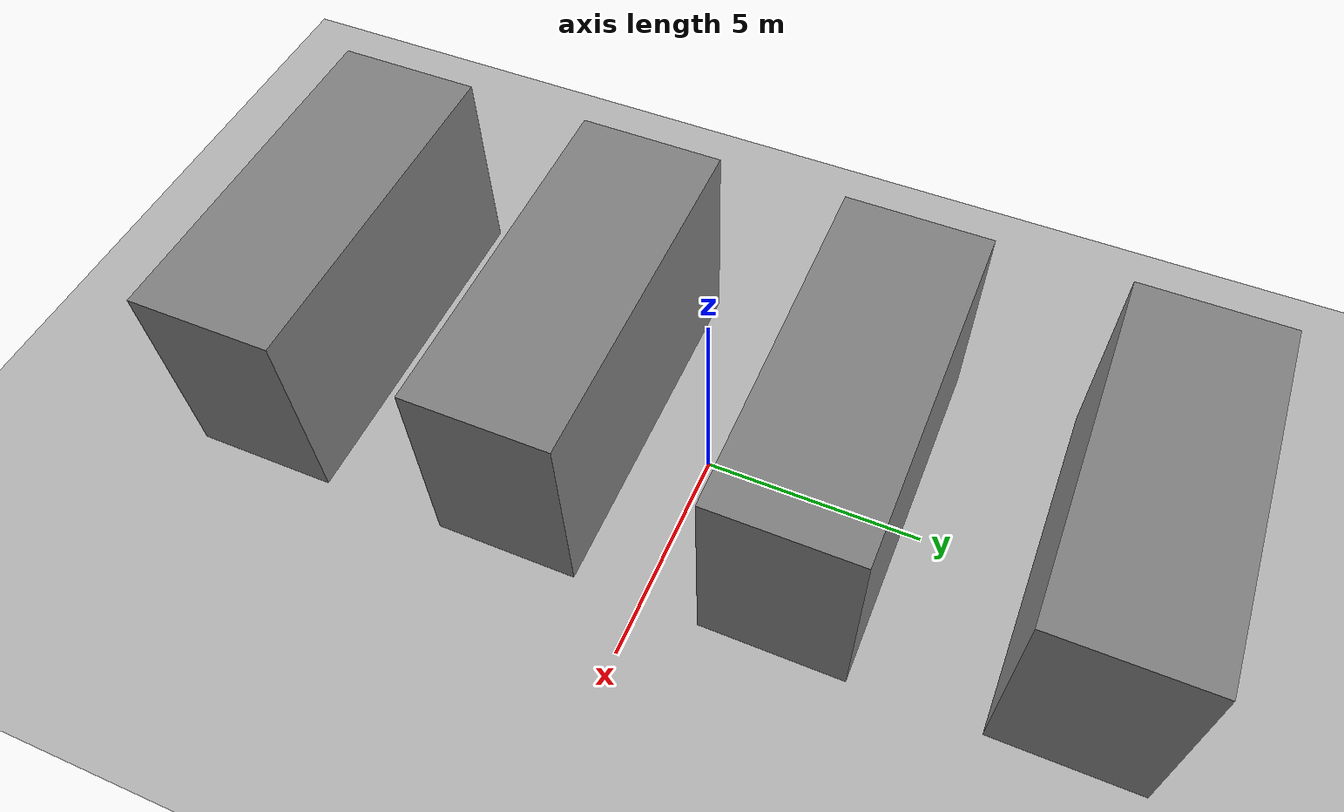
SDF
<?xml version="1.0" ?>
<sdf version='1.7'>
  <world name='default'>
    <light name='sun' type='directional'>
      <cast_shadows>1</cast_shadows>
      <pose>0 0 10 0 -0 0</pose>
      <diffuse>0.8 0.8 0.8 1</diffuse>
      <specular>0.2 0.2 0.2 1</specular>
      <attenuation>
        <range>1000</range>
        <constant>0.9</constant>
        <linear>0.01</linear>
        <quadratic>0.001</quadratic>
      </attenuation>
      <direction>-0.5 0.1 -0.9</direction>
    </light>

    <model name='ground_plane'>
      <static>1</static>
      <link name='link'>
        <collision name='collision'>
          <geometry>
            <plane>
              <normal>0 0 1</normal>
              <size>200 200</size>
            </plane>
          </geometry>
        </collision>
        <visual name='visual'>
          <cast_shadows>0</cast_shadows>
          <geometry>
            <plane>
              <normal>0 0 1</normal>
              <size>200 200</size>
            </plane>
          </geometry>
          <material>
            <ambient>0.7 0.7 0.7 1</ambient>
            <diffuse>0.7 0.7 0.7 1</diffuse>
            <specular>0.2 0.2 0.2 1</specular>
          </material>
        </visual>
      </link>
    </model>

    <gravity>0 0 -9.8</gravity>
    <atmosphere type='adiabatic'/>
    <physics type='ode'>
      <max_step_size>0.004</max_step_size>
      <real_time_factor>1</real_time_factor>
      <real_time_update_rate>250</real_time_update_rate>
    </physics>

    <plugin filename="ignition-gazebo-physics-system" name="gz::sim::systems::Physics"/>
    <plugin filename="ignition-gazebo-sensors-system" name="gz::sim::systems::Sensors">
      <render_engine>ogre2</render_engine>
    </plugin>
    <plugin filename="ignition-gazebo-user-commands-system" name="gz::sim::systems::UserCommands"/>
    <plugin filename="ignition-gazebo-scene-broadcaster-system" name="gz::sim::systems::SceneBroadcaster"/>

    <scene>
      <ambient>0.4 0.4 0.4 1</ambient>
      <background>0.7 0.7 0.7 1</background>
      <shadows>1</shadows>
    </scene>

    <!-- 4 面平行墙体，墙之间形成 3 条窄道 -->
    <model name='corridor_walls'>
      <static>1</static>
      <pose>0 0 0 0 0 0</pose>

      <!-- 尺寸：length_x=10m，thickness_y=4m，height_z=6m -->
      <!-- 走廊净宽：2.0m；因此墙中心间距为 6.0m (= 2.0 + 4.0) -->
      <link name='wall_01'>
        <pose>0 -9 3 0 0 0</pose>
        <collision name='collision'>
          <geometry><box><size>8 3.2 4.8</size></box></geometry>
        </collision>
        <visual name='visual'>
          <geometry><box><size>8 3.2 4.8</size></box></geometry>
          <material><ambient>0.5 0.5 0.5 1</ambient><diffuse>0.5 0.5 0.5 1</diffuse></material>
        </visual>
      </link>

      <link name='wall_02'>
        <pose>0 -3 3 0 0 0</pose>
        <collision name='collision'>
          <geometry><box><size>8 3.2 4.8</size></box></geometry>
        </collision>
        <visual name='visual'>
          <geometry><box><size>8 3.2 4.8</size></box></geometry>
          <material><ambient>0.5 0.5 0.5 1</ambient><diffuse>0.5 0.5 0.5 1</diffuse></material>
        </visual>
      </link>

      <link name='wall_03'>
        <pose>0 3 3 0 0 0</pose>
        <collision name='collision'>
          <geometry><box><size>8 3.2 4.8</size></box></geometry>
        </collision>
        <visual name='visual'>
          <geometry><box><size>8 3.2 4.8</size></box></geometry>
          <material><ambient>0.5 0.5 0.5 1</ambient><diffuse>0.5 0.5 0.5 1</diffuse></material>
        </visual>
      </link>

      <link name='wall_04'>
        <pose>0 9 3 0 0 0</pose>
        <collision name='collision'>
          <geometry><box><size>8 3.2 4.8</size></box></geometry>
        </collision>
        <visual name='visual'>
          <geometry><box><size>8 3.2 4.8</size></box></geometry>
          <material><ambient>0.5 0.5 0.5 1</ambient><diffuse>0.5 0.5 0.5 1</diffuse></material>
        </visual>
      </link>
    </model>

    <gui fullscreen='0'>
      <camera name='user_camera'>
        <pose>-15 0 12 0 0.6 0</pose>
        <view_controller>orbit</view_controller>
        <projection_type>perspective</projection_type>
      </camera>
    </gui>
  </world>
</sdf>
